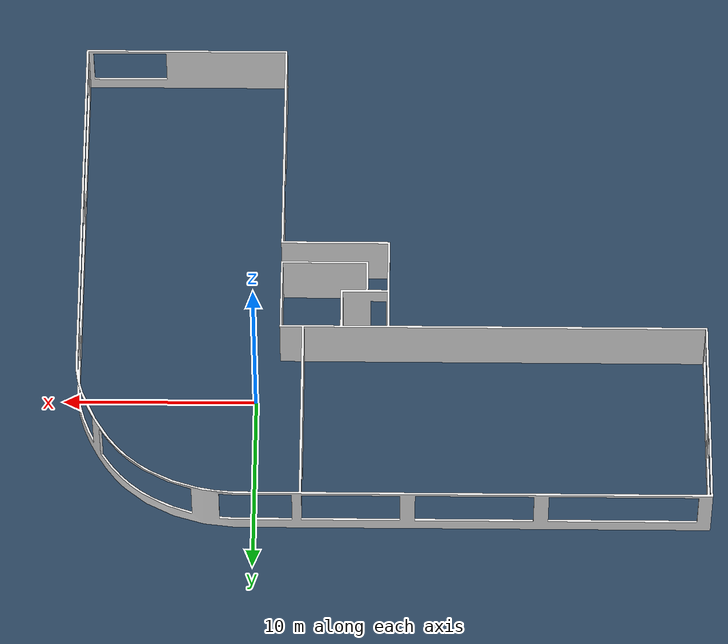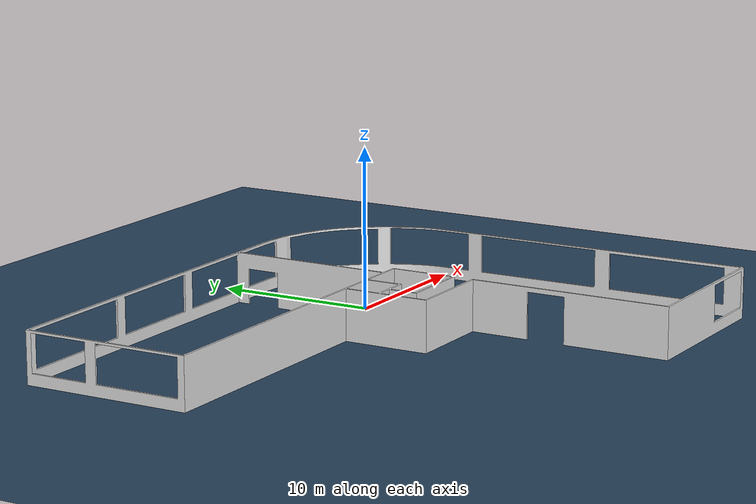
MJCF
<mujoco model="g1_5fingers_office_final">
  <compiler angle="radian" autolimits="true" meshdir="unitree_ros/robots/g1_description/meshes/"/>

  <option timestep="0.002" gravity="0 0 -9.81" cone="elliptic" jacobian="dense" solver="Newton" iterations="50"/>

  <statistic center="0 0 2" extent="20"/>

  <visual>
    <headlight diffuse="0.6 0.6 0.6" ambient="0.3 0.3 0.3" specular="0 0 0"/>
    <rgba haze="0.15 0.25 0.35 1"/>
    <global azimuth="-130" elevation="-20"/>
  </visual>

  <asset>
    <!-- Assets do ambiente -->
    <texture type="skybox" builtin="gradient" rgb1="0.3 0.5 0.7" rgb2="0 0 0" width="512" height="3072"/>
    <texture type="2d" name="groundplane" builtin="checker" mark="edge" rgb1="0.2 0.3 0.4" rgb2="0.1 0.2 0.3"
      markrgb="0.8 0.8 0.8" width="300" height="300"/>
    <material name="groundplane" texture="groundplane" texuniform="true" texrepeat="5 5" reflectance="0.2"/>
    <material name="wall" rgba="0.9 0.9 0.9 1" specular="0.1"/>

    <!-- Paredes do escritório -->
    <mesh name="office_walls" file="../../../3d escritorio/body1_structure/body1_structure.obj" scale="0.01 0.01 0.01"/>
  </asset>

  <worldbody>
    <!-- Iluminação -->
    <light pos="0 0 10" dir="0 0 -1" directional="true"/>
    <light pos="10 10 8" dir="-1 -1 -1" directional="false"/>

    <!-- Chão -->
    <geom name="office_floor" size="50 50 0.05" type="plane" material="groundplane"/>

    <!-- Paredes do escritório -->
    <body name="walls" pos="-5.73 -7.00 0">
      <geom name="office_walls_geom" mesh="office_walls" type="mesh" contype="1" conaffinity="1" material="wall"/>
    </body>

    <!-- G1 Robot com ajuste de posição -->
    <body name="robot_base" pos="0 0 0.80">
      <include file="g1_5fingers_converted.xml"/>
    </body>
  </worldbody>
</mujoco>

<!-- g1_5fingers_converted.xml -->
<mujoco model="g1_29dof_rev_1_0_with_inspire_hand_DFQ">
  <compiler angle="radian" meshdir="unitree_ros/robots/g1_description/meshes/"/>

  <asset>
    <mesh name="pelvis" file="pelvis.STL"/>
    <mesh name="pelvis_contour_link" file="pelvis_contour_link.STL"/>
    <mesh name="left_hip_pitch_link" file="left_hip_pitch_link.STL"/>
    <mesh name="left_hip_roll_link" file="left_hip_roll_link.STL"/>
    <mesh name="left_hip_yaw_link" file="left_hip_yaw_link.STL"/>
    <mesh name="left_knee_link" file="left_knee_link.STL"/>
    <mesh name="left_ankle_pitch_link" file="left_ankle_pitch_link.STL"/>
    <mesh name="left_ankle_roll_link" file="left_ankle_roll_link.STL"/>
    <mesh name="right_hip_pitch_link" file="right_hip_pitch_link.STL"/>
    <mesh name="right_hip_roll_link" file="right_hip_roll_link.STL"/>
    <mesh name="right_hip_yaw_link" file="right_hip_yaw_link.STL"/>
    <mesh name="right_knee_link" file="right_knee_link.STL"/>
    <mesh name="right_ankle_pitch_link" file="right_ankle_pitch_link.STL"/>
    <mesh name="right_ankle_roll_link" file="right_ankle_roll_link.STL"/>
    <mesh name="waist_yaw_link_rev_1_0" file="waist_yaw_link_rev_1_0.STL"/>
    <mesh name="waist_roll_link_rev_1_0" file="waist_roll_link_rev_1_0.STL"/>
    <mesh name="torso_link_rev_1_0" file="torso_link_rev_1_0.STL"/>
    <mesh name="logo_link" file="logo_link.STL"/>
    <mesh name="head_link" file="head_link.STL"/>
    <mesh name="left_shoulder_pitch_link" file="left_shoulder_pitch_link.STL"/>
    <mesh name="left_shoulder_roll_link" file="left_shoulder_roll_link.STL"/>
    <mesh name="left_shoulder_yaw_link" file="left_shoulder_yaw_link.STL"/>
    <mesh name="left_elbow_link" file="left_elbow_link.STL"/>
    <mesh name="left_wrist_roll_link" file="left_wrist_roll_link.STL"/>
    <mesh name="left_wrist_pitch_link" file="left_wrist_pitch_link.STL"/>
    <mesh name="left_wrist_yaw_link" file="left_wrist_yaw_link.STL"/>
    <mesh name="right_shoulder_pitch_link" file="right_shoulder_pitch_link.STL"/>
    <mesh name="right_shoulder_roll_link" file="right_shoulder_roll_link.STL"/>
    <mesh name="right_shoulder_yaw_link" file="right_shoulder_yaw_link.STL"/>
    <mesh name="right_elbow_link" file="right_elbow_link.STL"/>
    <mesh name="right_wrist_roll_link" file="right_wrist_roll_link.STL"/>
    <mesh name="right_wrist_pitch_link" file="right_wrist_pitch_link.STL"/>
    <mesh name="right_wrist_yaw_link" file="right_wrist_yaw_link.STL"/>
    <mesh name="L_hand_base_link" file="L_hand_base_link.STL"/>
    <mesh name="Link11_L" file="Link11_L.STL"/>
    <mesh name="Link12_L" file="Link12_L.STL"/>
    <mesh name="Link13_L" file="Link13_L.STL"/>
    <mesh name="Link14_L" file="Link14_L.STL"/>
    <mesh name="Link15_L" file="Link15_L.STL"/>
    <mesh name="Link16_L" file="Link16_L.STL"/>
    <mesh name="Link17_L" file="Link17_L.STL"/>
    <mesh name="Link18_L" file="Link18_L.STL"/>
    <mesh name="Link19_L" file="Link19_L.STL"/>
    <mesh name="Link20_L" file="Link20_L.STL"/>
    <mesh name="Link21_L" file="Link21_L.STL"/>
    <mesh name="Link22_L" file="Link22_L.STL"/>
    <mesh name="R_hand_base_link" file="R_hand_base_link.STL"/>
    <mesh name="Link11_R" file="Link11_R.STL"/>
    <mesh name="Link12_R" file="Link12_R.STL"/>
    <mesh name="Link13_R" file="Link13_R.STL"/>
    <mesh name="Link14_R" file="Link14_R.STL"/>
    <mesh name="Link15_R" file="Link15_R.STL"/>
    <mesh name="Link16_R" file="Link16_R.STL"/>
    <mesh name="Link17_R" file="Link17_R.STL"/>
    <mesh name="Link18_R" file="Link18_R.STL"/>
    <mesh name="Link19_R" file="Link19_R.STL"/>
    <mesh name="Link20_R" file="Link20_R.STL"/>
    <mesh name="Link21_R" file="Link21_R.STL"/>
    <mesh name="Link22_R" file="Link22_R.STL"/>
  </asset>

  <worldbody>
    <geom type="mesh" contype="0" conaffinity="0" group="1" density="0" rgba="0.2 0.2 0.2 1" mesh="pelvis"/>
    <geom type="mesh" contype="0" conaffinity="0" group="1" density="0" rgba="0.7 0.7 0.7 1" mesh="pelvis_contour_link"/>
    <geom type="mesh" rgba="0.7 0.7 0.7 1" mesh="pelvis_contour_link"/>
    <body name="left_hip_pitch_link" pos="0 0.064452 -0.1027">
      <inertial pos="0.002741 0.047791 -0.02606" quat="0.954862 0.293964 0.0302556 0.030122" mass="1.35" diaginertia="0.00181517 0.00153422 0.00116212"/>
      <joint name="left_hip_pitch_joint" pos="0 0 0" axis="0 1 0" range="-2.5307 2.8798" actuatorfrcrange="-88 88"/>
      <geom type="mesh" contype="0" conaffinity="0" group="1" density="0" rgba="0.2 0.2 0.2 1" mesh="left_hip_pitch_link"/>
      <geom type="mesh" rgba="0.2 0.2 0.2 1" mesh="left_hip_pitch_link"/>
      <body name="left_hip_roll_link" pos="0 0.052 -0.030465" quat="0.996179 0 -0.0873386 0">
        <inertial pos="0.029812 -0.001045 -0.087934" quat="0.977808 -1.97119e-05 0.205576 -0.0403793" mass="1.52" diaginertia="0.00254986 0.00241169 0.00148755"/>
        <joint name="left_hip_roll_joint" pos="0 0 0" axis="1 0 0" range="-0.5236 2.9671" actuatorfrcrange="-139 139"/>
        <geom type="mesh" contype="0" conaffinity="0" group="1" density="0" rgba="0.7 0.7 0.7 1" mesh="left_hip_roll_link"/>
        <geom type="mesh" rgba="0.7 0.7 0.7 1" mesh="left_hip_roll_link"/>
        <body name="left_hip_yaw_link" pos="0.025001 0 -0.12412">
          <inertial pos="-0.057709 -0.010981 -0.15078" quat="0.600598 0.15832 0.223482 0.751181" mass="1.702" diaginertia="0.00776166 0.00717575 0.00160139"/>
          <joint name="left_hip_yaw_joint" pos="0 0 0" axis="0 0 1" range="-2.7576 2.7576" actuatorfrcrange="-88 88"/>
          <geom type="mesh" contype="0" conaffinity="0" group="1" density="0" rgba="0.7 0.7 0.7 1" mesh="left_hip_yaw_link"/>
          <geom type="mesh" rgba="0.7 0.7 0.7 1" mesh="left_hip_yaw_link"/>
          <body name="left_knee_link" pos="-0.078273 0.0021489 -0.17734" quat="0.996179 0 0.0873386 0">
            <inertial pos="0.005457 0.003964 -0.12074" quat="0.923418 -0.0327699 0.0158246 0.382067" mass="1.932" diaginertia="0.0113804 0.0112778 0.00146458"/>
            <joint name="left_knee_joint" pos="0 0 0" axis="0 1 0" range="-0.087267 2.8798" actuatorfrcrange="-139 139"/>
            <geom type="mesh" contype="0" conaffinity="0" group="1" density="0" rgba="0.7 0.7 0.7 1" mesh="left_knee_link"/>
            <geom type="mesh" rgba="0.7 0.7 0.7 1" mesh="left_knee_link"/>
            <body name="left_ankle_pitch_link" pos="0 -9.4445e-05 -0.30001">
              <inertial pos="-0.007269 0 0.011137" quat="0.603053 0.369225 0.369225 0.603053" mass="0.074" diaginertia="1.89e-05 1.40805e-05 6.9195e-06"/>
              <joint name="left_ankle_pitch_joint" pos="0 0 0" axis="0 1 0" range="-0.87267 0.5236" actuatorfrcrange="-35 35"/>
              <geom type="mesh" contype="0" conaffinity="0" group="1" density="0" rgba="0.7 0.7 0.7 1" mesh="left_ankle_pitch_link"/>
              <geom type="mesh" rgba="0.7 0.7 0.7 1" mesh="left_ankle_pitch_link"/>
              <body name="left_ankle_roll_link" pos="0 0 -0.017558">
                <inertial pos="0.026505 0 -0.016425" quat="-0.000481092 0.728482 -0.000618967 0.685065" mass="0.608" diaginertia="0.00167218 0.0016161 0.000217621"/>
                <joint name="left_ankle_roll_joint" pos="0 0 0" axis="1 0 0" range="-0.2618 0.2618" actuatorfrcrange="-35 35"/>
                <geom type="mesh" contype="0" conaffinity="0" group="1" density="0" rgba="0.2 0.2 0.2 1" mesh="left_ankle_roll_link"/>
                <geom size="0.005" pos="-0.05 0.025 -0.03" rgba="0.2 0.2 0.2 1"/>
                <geom size="0.005" pos="-0.05 -0.025 -0.03" rgba="0.2 0.2 0.2 1"/>
                <geom size="0.005" pos="0.12 0.03 -0.03" rgba="0.2 0.2 0.2 1"/>
                <geom size="0.005" pos="0.12 -0.03 -0.03" rgba="0.2 0.2 0.2 1"/>
              </body>
            </body>
          </body>
        </body>
      </body>
    </body>
    <body name="right_hip_pitch_link" pos="0 -0.064452 -0.1027">
      <inertial pos="0.002741 -0.047791 -0.02606" quat="0.954862 -0.293964 0.0302556 -0.030122" mass="1.35" diaginertia="0.00181517 0.00153422 0.00116212"/>
      <joint name="right_hip_pitch_joint" pos="0 0 0" axis="0 1 0" range="-2.5307 2.8798" actuatorfrcrange="-88 88"/>
      <geom type="mesh" contype="0" conaffinity="0" group="1" density="0" rgba="0.2 0.2 0.2 1" mesh="right_hip_pitch_link"/>
      <geom type="mesh" rgba="0.2 0.2 0.2 1" mesh="right_hip_pitch_link"/>
      <body name="right_hip_roll_link" pos="0 -0.052 -0.030465" quat="0.996179 0 -0.0873386 0">
        <inertial pos="0.029812 0.001045 -0.087934" quat="0.977808 1.97119e-05 0.205576 0.0403793" mass="1.52" diaginertia="0.00254986 0.00241169 0.00148755"/>
        <joint name="right_hip_roll_joint" pos="0 0 0" axis="1 0 0" range="-2.9671 0.5236" actuatorfrcrange="-139 139"/>
        <geom type="mesh" contype="0" conaffinity="0" group="1" density="0" rgba="0.7 0.7 0.7 1" mesh="right_hip_roll_link"/>
        <geom type="mesh" rgba="0.7 0.7 0.7 1" mesh="right_hip_roll_link"/>
        <body name="right_hip_yaw_link" pos="0.025001 0 -0.12412">
          <inertial pos="-0.057709 0.010981 -0.15078" quat="0.751181 0.223482 0.15832 0.600598" mass="1.702" diaginertia="0.00776166 0.00717575 0.00160139"/>
          <joint name="right_hip_yaw_joint" pos="0 0 0" axis="0 0 1" range="-2.7576 2.7576" actuatorfrcrange="-88 88"/>
          <geom type="mesh" contype="0" conaffinity="0" group="1" density="0" rgba="0.7 0.7 0.7 1" mesh="right_hip_yaw_link"/>
          <geom type="mesh" rgba="0.7 0.7 0.7 1" mesh="right_hip_yaw_link"/>
          <body name="right_knee_link" pos="-0.078273 -0.0021489 -0.17734" quat="0.996179 0 0.0873386 0">
            <inertial pos="0.005457 -0.003964 -0.12074" quat="0.923439 0.0345276 0.0116333 -0.382012" mass="1.932" diaginertia="0.011374 0.0112843 0.00146452"/>
            <joint name="right_knee_joint" pos="0 0 0" axis="0 1 0" range="-0.087267 2.8798" actuatorfrcrange="-139 139"/>
            <geom type="mesh" contype="0" conaffinity="0" group="1" density="0" rgba="0.7 0.7 0.7 1" mesh="right_knee_link"/>
            <geom type="mesh" rgba="0.7 0.7 0.7 1" mesh="right_knee_link"/>
            <body name="right_ankle_pitch_link" pos="0 9.4445e-05 -0.30001">
              <inertial pos="-0.007269 0 0.011137" quat="0.603053 0.369225 0.369225 0.603053" mass="0.074" diaginertia="1.89e-05 1.40805e-05 6.9195e-06"/>
              <joint name="right_ankle_pitch_joint" pos="0 0 0" axis="0 1 0" range="-0.87267 0.5236" actuatorfrcrange="-35 35"/>
              <geom type="mesh" contype="0" conaffinity="0" group="1" density="0" rgba="0.7 0.7 0.7 1" mesh="right_ankle_pitch_link"/>
              <geom type="mesh" rgba="0.7 0.7 0.7 1" mesh="right_ankle_pitch_link"/>
              <body name="right_ankle_roll_link" pos="0 0 -0.017558">
                <inertial pos="0.026505 0 -0.016425" quat="0.000481092 0.728482 0.000618967 0.685065" mass="0.608" diaginertia="0.00167218 0.0016161 0.000217621"/>
                <joint name="right_ankle_roll_joint" pos="0 0 0" axis="1 0 0" range="-0.2618 0.2618" actuatorfrcrange="-35 35"/>
                <geom type="mesh" contype="0" conaffinity="0" group="1" density="0" rgba="0.2 0.2 0.2 1" mesh="right_ankle_roll_link"/>
                <geom size="0.005" pos="-0.05 0.025 -0.03" rgba="0.2 0.2 0.2 1"/>
                <geom size="0.005" pos="-0.05 -0.025 -0.03" rgba="0.2 0.2 0.2 1"/>
                <geom size="0.005" pos="0.12 0.03 -0.03" rgba="0.2 0.2 0.2 1"/>
                <geom size="0.005" pos="0.12 -0.03 -0.03" rgba="0.2 0.2 0.2 1"/>
              </body>
            </body>
          </body>
        </body>
      </body>
    </body>
    <body name="waist_yaw_link">
      <inertial pos="0.003494 0.000233 0.018034" quat="0.289697 0.591001 -0.337795 0.672821" mass="0.214" diaginertia="0.000163531 0.000107714 0.000102205"/>
      <joint name="waist_yaw_joint" pos="0 0 0" axis="0 0 1" range="-2.618 2.618" actuatorfrcrange="-88 88"/>
      <geom type="mesh" contype="0" conaffinity="0" group="1" density="0" rgba="0.7 0.7 0.7 1" mesh="waist_yaw_link_rev_1_0"/>
      <body name="waist_roll_link" pos="-0.0039635 0 0.044">
        <inertial pos="0 2.3e-05 0" quat="0.5 0.5 -0.5 0.5" mass="0.086" diaginertia="8.245e-06 7.079e-06 6.339e-06"/>
        <joint name="waist_roll_joint" pos="0 0 0" axis="1 0 0" range="-0.52 0.52" actuatorfrcrange="-35 35"/>
        <geom type="mesh" contype="0" conaffinity="0" group="1" density="0" rgba="0.7 0.7 0.7 1" mesh="waist_roll_link_rev_1_0"/>
        <body name="torso_link">
          <inertial pos="0.00203133 0.000339727 0.184597" quat="0.999802 -5.98967e-05 0.0198391 0.0013197" mass="7.817" diaginertia="0.121795 0.109773 0.0273733"/>
          <joint name="waist_pitch_joint" pos="0 0 0" axis="0 1 0" range="-0.52 0.52" actuatorfrcrange="-35 35"/>
          <geom type="mesh" contype="0" conaffinity="0" group="1" density="0" rgba="0.7 0.7 0.7 1" mesh="torso_link_rev_1_0"/>
          <geom type="mesh" rgba="0.7 0.7 0.7 1" mesh="torso_link_rev_1_0"/>
          <geom pos="0.0039635 0 -0.044" quat="1 0 0 0" type="mesh" contype="0" conaffinity="0" group="1" density="0" rgba="0.2 0.2 0.2 1" mesh="logo_link"/>
          <geom pos="0.0039635 0 -0.044" quat="1 0 0 0" type="mesh" rgba="0.2 0.2 0.2 1" mesh="logo_link"/>
          <geom pos="0.0039635 0 -0.044" type="mesh" contype="0" conaffinity="0" group="1" density="0" rgba="0.2 0.2 0.2 1" mesh="head_link"/>
          <geom pos="0.0039635 0 -0.044" type="mesh" rgba="0.2 0.2 0.2 1" mesh="head_link"/>
          <body name="left_shoulder_pitch_link" pos="0.0039563 0.10022 0.24778" quat="0.990264 0.139201 1.38722e-05 -9.86868e-05">
            <inertial pos="0 0.035892 -0.011628" quat="0.654152 0.0130458 -0.326267 0.68225" mass="0.718" diaginertia="0.000465864 0.000432842 0.000406394"/>
            <joint name="left_shoulder_pitch_joint" pos="0 0 0" axis="0 1 0" range="-3.0892 2.6704" actuatorfrcrange="-25 25"/>
            <geom type="mesh" contype="0" conaffinity="0" group="1" density="0" rgba="0.7 0.7 0.7 1" mesh="left_shoulder_pitch_link"/>
            <geom size="0.03 0.025" pos="0 0.04 -0.01" quat="0.707107 0 0.707107 0" type="cylinder" rgba="0.7 0.7 0.7 1"/>
            <body name="left_shoulder_roll_link" pos="0 0.038 -0.013831" quat="0.990268 -0.139172 0 0">
              <inertial pos="-0.000227 0.00727 -0.063243" quat="0.701256 -0.0196223 -0.00710317 0.712604" mass="0.643" diaginertia="0.000691311 0.000618011 0.000388977"/>
              <joint name="left_shoulder_roll_joint" pos="0 0 0" axis="1 0 0" range="-1.5882 2.2515" actuatorfrcrange="-25 25"/>
              <geom type="mesh" contype="0" conaffinity="0" group="1" density="0" rgba="0.7 0.7 0.7 1" mesh="left_shoulder_roll_link"/>
              <geom size="0.03 0.015" pos="-0.004 0.006 -0.053" type="cylinder" rgba="0.7 0.7 0.7 1"/>
              <body name="left_shoulder_yaw_link" pos="0 0.00624 -0.1032">
                <inertial pos="0.010773 -0.002949 -0.072009" quat="0.716879 -0.0964829 -0.0679942 0.687134" mass="0.734" diaginertia="0.00106187 0.00103217 0.000400661"/>
                <joint name="left_shoulder_yaw_joint" pos="0 0 0" axis="0 0 1" range="-2.618 2.618" actuatorfrcrange="-25 25"/>
                <geom type="mesh" contype="0" conaffinity="0" group="1" density="0" rgba="0.7 0.7 0.7 1" mesh="left_shoulder_yaw_link"/>
                <geom type="mesh" rgba="0.7 0.7 0.7 1" mesh="left_shoulder_yaw_link"/>
                <body name="left_elbow_link" pos="0.015783 0 -0.080518">
                  <inertial pos="0.064956 0.004454 -0.010062" quat="0.541765 0.636132 0.388821 0.388129" mass="0.6" diaginertia="0.000443035 0.000421612 0.000259353"/>
                  <joint name="left_elbow_joint" pos="0 0 0" axis="0 1 0" range="-1.0472 2.0944" actuatorfrcrange="-25 25"/>
                  <geom type="mesh" contype="0" conaffinity="0" group="1" density="0" rgba="0.7 0.7 0.7 1" mesh="left_elbow_link"/>
                  <geom type="mesh" rgba="0.7 0.7 0.7 1" mesh="left_elbow_link"/>
                  <body name="left_wrist_roll_link" pos="0.1 0.00188791 -0.01">
                    <inertial pos="0.0171394 0.000537591 4.8864e-07" quat="0.575338 0.411667 -0.574906 0.411094" mass="0.085445" diaginertia="5.48211e-05 4.96646e-05 3.57798e-05"/>
                    <joint name="left_wrist_roll_joint" pos="0 0 0" axis="1 0 0" range="-1.97222 1.97222" actuatorfrcrange="-25 25"/>
                    <geom type="mesh" contype="0" conaffinity="0" group="1" density="0" rgba="0.7 0.7 0.7 1" mesh="left_wrist_roll_link"/>
                    <geom type="mesh" rgba="0.7 0.7 0.7 1" mesh="left_wrist_roll_link"/>
                    <body name="left_wrist_pitch_link" pos="0.038 0 0">
                      <inertial pos="0.0229999 -0.00111685 -0.00111658" quat="0.249998 0.661363 0.293036 0.643608" mass="0.48405" diaginertia="0.000430353 0.000429873 0.000164648"/>
                      <joint name="left_wrist_pitch_joint" pos="0 0 0" axis="0 1 0" range="-1.61443 1.61443" actuatorfrcrange="-5 5"/>
                      <geom type="mesh" contype="0" conaffinity="0" group="1" density="0" rgba="0.7 0.7 0.7 1" mesh="left_wrist_pitch_link"/>
                      <geom type="mesh" rgba="0.7 0.7 0.7 1" mesh="left_wrist_pitch_link"/>
                      <body name="left_wrist_yaw_link" pos="0.046 0 0">
                        <inertial pos="0.0755349 -0.00141118 -0.00100976" quat="0.501653 0.510626 0.50818 0.478915" mass="0.226006" diaginertia="0.000571064 0.000504804 0.000133122"/>
                        <joint name="left_wrist_yaw_joint" pos="0 0 0" axis="0 0 1" range="-1.61443 1.61443" actuatorfrcrange="-5 5"/>
                        <geom type="mesh" contype="0" conaffinity="0" group="1" density="0" rgba="0.7 0.7 0.7 1" mesh="left_wrist_yaw_link"/>
                        <geom type="mesh" rgba="0.7 0.7 0.7 1" mesh="left_wrist_yaw_link"/>
                        <geom pos="0.0415 0 0" quat="0.707107 0 0 0.707107" type="mesh" contype="0" conaffinity="0" group="1" density="0" rgba="1 1 1 1" mesh="L_hand_base_link"/>
                        <geom pos="0.0415 0 0" quat="0.707107 0 0 0.707107" type="mesh" rgba="1 1 1 1" mesh="L_hand_base_link"/>
                        <body name="L_thumb_proximal_base" pos="0.1106 -0.01696 0.02045" quat="-2.59735e-06 0.707107 0 0.707107">
                          <inertial pos="0.0048817 0.00038782 -0.00722" quat="0.445981 0.352284 0.495833 0.656617" mass="0.0018869" diaginertia="8.66031e-08 6.87331e-08 4.94199e-08"/>
                          <joint name="L_thumb_proximal_yaw_joint" pos="0 0 0" axis="0 0 1" range="-0.1 1.3" actuatorfrcrange="-1 1"/>
                          <geom type="mesh" contype="0" conaffinity="0" group="1" density="0" rgba="1 1 1 1" mesh="Link11_L"/>
                          <geom type="mesh" rgba="1 1 1 1" mesh="Link11_L"/>
                          <body name="L_thumb_proximal" pos="0.0099867 0.0098242 -0.0089" quat="0.704571 -0.704573 -0.0598169 0.0598167">
                            <inertial pos="0.021936 -0.01279 -0.0080386" quat="0.25452 0.660687 -0.251949 0.659723" mass="0.0066101" diaginertia="2.78701e-06 2.44024e-06 8.6466e-07"/>
                            <joint name="L_thumb_proximal_pitch_joint" pos="0 0 0" axis="0 0 -1" range="-0.1 0.6" actuatorfrcrange="-1 1"/>
                            <geom type="mesh" contype="0" conaffinity="0" group="1" density="0" rgba="1 1 1 1" mesh="Link12_L"/>
                            <geom type="mesh" rgba="1 1 1 1" mesh="Link12_L"/>
                            <body name="L_thumb_intermediate" pos="0.04407 -0.034553 -0.0008">
                              <inertial pos="0.0095531 0.0016282 -0.0072002" quat="0.30738 0.636732 -0.307526 0.636803" mass="0.0037844" diaginertia="4.6532e-07 4.48114e-07 2.45646e-07"/>
                              <joint name="L_thumb_intermediate_joint" pos="0 0 0" axis="0 0 -1" range="0 0.8" actuatorfrcrange="-1 1"/>
                              <geom type="mesh" contype="0" conaffinity="0" group="1" density="0" rgba="1 1 1 1" mesh="Link13_L"/>
                              <geom type="mesh" rgba="1 1 1 1" mesh="Link13_L"/>
                              <body name="L_thumb_distal" pos="0.020248 -0.010156 -0.0012">
                                <inertial pos="0.0092888 -0.004953 -0.0060033" quat="0.266264 0.65596 -0.262836 0.655544" mass="0.003344" diaginertia="2.0026e-07 1.95246e-07 8.1594e-08"/>
                                <joint name="L_thumb_distal_joint" pos="0 0 0" axis="0 0 -1" range="0 1.2" actuatorfrcrange="-1 1"/>
                                <geom type="mesh" contype="0" conaffinity="0" group="1" density="0" rgba="1 1 1 1" mesh="Link14_L"/>
                                <geom type="mesh" rgba="1 1 1 1" mesh="Link14_L"/>
                              </body>
                            </body>
                          </body>
                        </body>
                        <body name="L_index_proximal" pos="0.17803 0.00028533 0.032268" quat="0.706999 -0.0123409 -0.0123409 0.706999">
                          <inertial pos="0.0012971 -0.011934 -0.0059998" quat="0.489677 0.510115 -0.489692 0.510099" mass="0.0042405" diaginertia="6.9402e-07 6.62904e-07 2.10916e-07"/>
                          <joint name="L_index_proximal_joint" pos="0 0 0" axis="0 0 -1" range="0 1.7" actuatorfrcrange="-1 1"/>
                          <geom type="mesh" contype="0" conaffinity="0" group="1" density="0" rgba="1 1 1 1" mesh="Link15_L"/>
                          <geom type="mesh" rgba="1 1 1 1" mesh="Link15_L"/>
                          <body name="L_index_intermediate" pos="-0.0024229 -0.032041 -0.001">
                            <inertial pos="0.0021753 -0.019567 -0.005" quat="0.528694 0.469555 -0.528694 0.469555" mass="0.0045682" diaginertia="7.8176e-07 7.72427e-07 8.47209e-08"/>
                            <joint name="L_index_intermediate_joint" pos="0 0 0" axis="0 0 -1" range="0 1.7" actuatorfrcrange="-1 1"/>
                            <geom type="mesh" contype="0" conaffinity="0" group="1" density="0" rgba="1 1 1 1" mesh="Link16_L"/>
                            <geom type="mesh" rgba="1 1 1 1" mesh="Link16_L"/>
                          </body>
                        </body>
                        <body name="L_middle_proximal" pos="0.1786 0.00028533 0.01295" quat="0.707107 0 0 0.707107">
                          <inertial pos="0.0012971 -0.011934 -0.0059999" quat="0.489677 0.510115 -0.489692 0.510099" mass="0.0042405" diaginertia="6.9402e-07 6.62904e-07 2.10916e-07"/>
                          <joint name="L_middle_proximal_joint" pos="0 0 0" axis="0 0 -1" range="0 1.7" actuatorfrcrange="-1 1"/>
                          <geom type="mesh" contype="0" conaffinity="0" group="1" density="0" rgba="1 1 1 1" mesh="Link17_L"/>
                          <geom type="mesh" rgba="1 1 1 1" mesh="Link17_L"/>
                          <body name="L_middle_intermediate" pos="-0.0024229 -0.032041 -0.001">
                            <inertial pos="0.001921 -0.020796 -0.0049999" quat="0.531603 0.466115 -0.531728 0.466262" mass="0.0050397" diaginertia="9.8385e-07 9.73288e-07 9.14016e-08"/>
                            <joint name="L_middle_intermediate_joint" pos="0 0 0" axis="0 0 -1" range="0 1.7" actuatorfrcrange="-1 1"/>
                            <geom type="mesh" contype="0" conaffinity="0" group="1" density="0" rgba="1 1 1 1" mesh="Link18_L"/>
                            <geom type="mesh" rgba="1 1 1 1" mesh="Link18_L"/>
                          </body>
                        </body>
                        <body name="L_ring_proximal" pos="0.17841 0.00028533 -0.0062872" quat="0.706864 0.0185099 0.0185099 0.706864">
                          <inertial pos="0.0012971 -0.011934 -0.0059999" quat="0.489677 0.510114 -0.489692 0.510099" mass="0.0042405" diaginertia="6.9402e-07 6.62904e-07 2.10916e-07"/>
                          <joint name="L_ring_proximal_joint" pos="0 0 0" axis="0 0 -1" range="0 1.7" actuatorfrcrange="-1 1"/>
                          <geom type="mesh" contype="0" conaffinity="0" group="1" density="0" rgba="1 1 1 1" mesh="Link19_L"/>
                          <geom type="mesh" rgba="1 1 1 1" mesh="Link19_L"/>
                          <body name="L_ring_intermediate" pos="-0.0024229 -0.032041 -0.001">
                            <inertial pos="0.0021753 -0.019567 -0.005" quat="0.528694 0.469556 -0.528694 0.469556" mass="0.0045682" diaginertia="7.8176e-07 7.72437e-07 8.47208e-08"/>
                            <joint name="L_ring_intermediate_joint" pos="0 0 0" axis="0 0 -1" range="0 1.7" actuatorfrcrange="-1 1"/>
                            <geom type="mesh" contype="0" conaffinity="0" group="1" density="0" rgba="1 1 1 1" mesh="Link20_L"/>
                            <geom type="mesh" rgba="1 1 1 1" mesh="Link20_L"/>
                          </body>
                        </body>
                        <body name="L_pinky_proximal" pos="0.17721 0.00028533 -0.025488" quat="0.706138 0.0370072 0.0370072 0.706138">
                          <inertial pos="0.0012971 -0.011934 -0.0059999" quat="0.489677 0.510114 -0.489692 0.510099" mass="0.0042405" diaginertia="6.9402e-07 6.62904e-07 2.10916e-07"/>
                          <joint name="L_pinky_proximal_joint" pos="0 0 0" axis="0 0 -1" range="0 1.7" actuatorfrcrange="-1 1"/>
                          <geom type="mesh" contype="0" conaffinity="0" group="1" density="0" rgba="1 1 1 1" mesh="Link21_L"/>
                          <geom type="mesh" rgba="1 1 1 1" mesh="Link21_L"/>
                          <body name="L_pinky_intermediate" pos="-0.0024229 -0.032041 -0.001">
                            <inertial pos="0.0024788 -0.016208 -0.0050001" quat="0.526797 0.471683 -0.526793 0.471687" mass="0.0036036" diaginertia="4.4881e-07 4.43809e-07 6.5736e-08"/>
                            <joint name="L_pinky_intermediate_joint" pos="0 0 0" axis="0 0 -1" range="0 1.7" actuatorfrcrange="-1 1"/>
                            <geom type="mesh" contype="0" conaffinity="0" group="1" density="0" rgba="1 1 1 1" mesh="Link22_L"/>
                            <geom type="mesh" rgba="1 1 1 1" mesh="Link22_L"/>
                          </body>
                        </body>
                      </body>
                    </body>
                  </body>
                </body>
              </body>
            </body>
          </body>
          <body name="right_shoulder_pitch_link" pos="0.0039563 -0.10021 0.24778" quat="0.990264 -0.139201 1.38722e-05 9.86868e-05">
            <inertial pos="0 -0.035892 -0.011628" quat="0.68225 -0.326267 0.0130458 0.654152" mass="0.718" diaginertia="0.000465864 0.000432842 0.000406394"/>
            <joint name="right_shoulder_pitch_joint" pos="0 0 0" axis="0 1 0" range="-3.0892 2.6704" actuatorfrcrange="-25 25"/>
            <geom type="mesh" contype="0" conaffinity="0" group="1" density="0" rgba="0.7 0.7 0.7 1" mesh="right_shoulder_pitch_link"/>
            <geom size="0.03 0.025" pos="0 -0.04 -0.01" quat="0.707107 0 0.707107 0" type="cylinder" rgba="0.7 0.7 0.7 1"/>
            <body name="right_shoulder_roll_link" pos="0 -0.038 -0.013831" quat="0.990268 0.139172 0 0">
              <inertial pos="-0.000227 -0.00727 -0.063243" quat="0.712604 -0.00710317 -0.0196223 0.701256" mass="0.643" diaginertia="0.000691311 0.000618011 0.000388977"/>
              <joint name="right_shoulder_roll_joint" pos="0 0 0" axis="1 0 0" range="-2.2515 1.5882" actuatorfrcrange="-25 25"/>
              <geom type="mesh" contype="0" conaffinity="0" group="1" density="0" rgba="0.7 0.7 0.7 1" mesh="right_shoulder_roll_link"/>
              <geom size="0.03 0.015" pos="-0.004 -0.006 -0.053" type="cylinder" rgba="0.7 0.7 0.7 1"/>
              <body name="right_shoulder_yaw_link" pos="0 -0.00624 -0.1032">
                <inertial pos="0.010773 0.002949 -0.072009" quat="0.687134 -0.0679942 -0.0964829 0.716879" mass="0.734" diaginertia="0.00106187 0.00103217 0.000400661"/>
                <joint name="right_shoulder_yaw_joint" pos="0 0 0" axis="0 0 1" range="-2.618 2.618" actuatorfrcrange="-25 25"/>
                <geom type="mesh" contype="0" conaffinity="0" group="1" density="0" rgba="0.7 0.7 0.7 1" mesh="right_shoulder_yaw_link"/>
                <geom type="mesh" rgba="0.7 0.7 0.7 1" mesh="right_shoulder_yaw_link"/>
                <body name="right_elbow_link" pos="0.015783 0 -0.080518">
                  <inertial pos="0.064956 -0.004454 -0.010062" quat="0.388129 0.388821 0.636132 0.541765" mass="0.6" diaginertia="0.000443035 0.000421612 0.000259353"/>
                  <joint name="right_elbow_joint" pos="0 0 0" axis="0 1 0" range="-1.0472 2.0944" actuatorfrcrange="-25 25"/>
                  <geom type="mesh" contype="0" conaffinity="0" group="1" density="0" rgba="0.7 0.7 0.7 1" mesh="right_elbow_link"/>
                  <geom type="mesh" rgba="0.7 0.7 0.7 1" mesh="right_elbow_link"/>
                  <body name="right_wrist_roll_link" pos="0.1 -0.00188791 -0.01">
                    <inertial pos="0.0171394 -0.000537591 4.8864e-07" quat="0.411667 0.575338 -0.411094 0.574906" mass="0.085445" diaginertia="5.48211e-05 4.96646e-05 3.57798e-05"/>
                    <joint name="right_wrist_roll_joint" pos="0 0 0" axis="1 0 0" range="-1.97222 1.97222" actuatorfrcrange="-25 25"/>
                    <geom type="mesh" contype="0" conaffinity="0" group="1" density="0" rgba="0.7 0.7 0.7 1" mesh="right_wrist_roll_link"/>
                    <geom type="mesh" rgba="0.7 0.7 0.7 1" mesh="right_wrist_roll_link"/>
                    <body name="right_wrist_pitch_link" pos="0.038 0 0">
                      <inertial pos="0.0229999 0.00111685 -0.00111658" quat="0.643608 0.293036 0.661363 0.249998" mass="0.48405" diaginertia="0.000430353 0.000429873 0.000164648"/>
                      <joint name="right_wrist_pitch_joint" pos="0 0 0" axis="0 1 0" range="-1.61443 1.61443" actuatorfrcrange="-5 5"/>
                      <geom type="mesh" contype="0" conaffinity="0" group="1" density="0" rgba="0.7 0.7 0.7 1" mesh="right_wrist_pitch_link"/>
                      <geom type="mesh" rgba="0.7 0.7 0.7 1" mesh="right_wrist_pitch_link"/>
                      <body name="right_wrist_yaw_link" pos="0.046 0 0">
                        <inertial pos="0.0755349 0.00139578 -0.00102484" quat="0.478892 0.50828 0.510621 0.501577" mass="0.226006" diaginertia="0.000570476 0.000504233 0.000133116"/>
                        <joint name="right_wrist_yaw_joint" pos="0 0 0" axis="0 0 1" range="-1.61443 1.61443" actuatorfrcrange="-5 5"/>
                        <geom type="mesh" contype="0" conaffinity="0" group="1" density="0" rgba="0.7 0.7 0.7 1" mesh="right_wrist_yaw_link"/>
                        <geom type="mesh" rgba="0.7 0.7 0.7 1" mesh="right_wrist_yaw_link"/>
                        <geom pos="0.0415 0 0" quat="0 0.707107 -0.707107 0" type="mesh" contype="0" conaffinity="0" group="1" density="0" rgba="1 1 1 1" mesh="R_hand_base_link"/>
                        <geom pos="0.0415 0 0" quat="0 0.707107 -0.707107 0" type="mesh" rgba="1 1 1 1" mesh="R_hand_base_link"/>
                        <body name="R_thumb_proximal_base" pos="0.1106 0.01696 0.02045" quat="-0.707107 -2.59735e-06 -0.707107 0">
                          <inertial pos="-0.0048064 0.0009382 -0.00757" quat="0.515015 0.680854 0.408023 0.323596" mass="0.0018869" diaginertia="8.66026e-08 6.8732e-08 4.94194e-08"/>
                          <joint name="R_thumb_proximal_yaw_joint" pos="0 0 0" axis="0 0 -1" range="-0.1 1.3" actuatorfrcrange="-1 1"/>
                          <geom type="mesh" contype="0" conaffinity="0" group="1" density="0" rgba="1 1 1 1" mesh="Link11_R"/>
                          <geom type="mesh" rgba="1 1 1 1" mesh="Link11_R"/>
                          <body name="R_thumb_proximal" pos="-0.0088099 0.010892 -0.00925" quat="0.0996843 0.0996847 0.700046 0.700044">
                            <inertial pos="0.021932 0.012785 -0.0080386" quat="-0.254474 0.660716 0.251893 0.659733" mass="0.0066075" diaginertia="2.78601e-06 2.43933e-06 8.64566e-07"/>
                            <joint name="R_thumb_proximal_pitch_joint" pos="0 0 0" axis="0 0 1" range="-0.1 0.6" actuatorfrcrange="-1 1"/>
                            <geom type="mesh" contype="0" conaffinity="0" group="1" density="0" rgba="1 1 1 1" mesh="Link12_R"/>
                            <geom type="mesh" rgba="1 1 1 1" mesh="Link12_R"/>
                            <body name="R_thumb_intermediate" pos="0.04407 0.034553 -0.0008">
                              <inertial pos="0.0095544 -0.0016282 -0.0071997" quat="0.636718 0.307389 -0.636802 0.307548" mass="0.0037847" diaginertia="4.6531e-07 4.48089e-07 2.45661e-07"/>
                              <joint name="R_thumb_intermediate_joint" pos="0 0 0" axis="0 0 1" range="0 0.8" actuatorfrcrange="-1 1"/>
                              <geom type="mesh" contype="0" conaffinity="0" group="1" density="0" rgba="1 1 1 1" mesh="Link13_R"/>
                              <geom type="mesh" rgba="1 1 1 1" mesh="Link13_R"/>
                              <body name="R_thumb_distal" pos="0.020248 0.010156 -0.0012">
                                <inertial pos="0.0092888 0.0049529 -0.0060033" quat="-0.266294 0.655967 0.262806 0.655537" mass="0.0033441" diaginertia="2.0026e-07 1.95247e-07 8.1593e-08"/>
                                <joint name="R_thumb_distal_joint" pos="0 0 0" axis="0 0 1" range="0 1.2" actuatorfrcrange="-1 1"/>
                                <geom type="mesh" contype="0" conaffinity="0" group="1" density="0" rgba="1 1 1 1" mesh="Link14_R"/>
                                <geom type="mesh" rgba="1 1 1 1" mesh="Link14_R"/>
                              </body>
                            </body>
                          </body>
                        </body>
                        <body name="R_index_proximal" pos="0.17803 -0.00028533 0.032268" quat="0.706999 0.0123358 -0.0123358 -0.706999">
                          <inertial pos="0.0012259 0.011942 -0.0060001" quat="0.50867 0.49121 -0.508643 0.491172" mass="0.0042403" diaginertia="6.9398e-07 6.62871e-07 2.10909e-07"/>
                          <joint name="R_index_proximal_joint" pos="0 0 0" axis="0 0 1" range="0 1.7" actuatorfrcrange="-1 1"/>
                          <geom type="mesh" contype="0" conaffinity="0" group="1" density="0" rgba="1 1 1 1" mesh="Link15_R"/>
                          <geom type="mesh" rgba="1 1 1 1" mesh="Link15_R"/>
                          <body name="R_index_intermediate" pos="-0.0026138 0.032026 -0.001">
                            <inertial pos="0.0019697 0.019589 -0.005" quat="0.466773 0.531152 -0.466773 0.531153" mass="0.0045683" diaginertia="7.8179e-07 7.72465e-07 8.47212e-08"/>
                            <joint name="R_index_intermediate_joint" pos="0 0 0" axis="0 0 1" range="0 1.7" actuatorfrcrange="-1 1"/>
                            <geom type="mesh" contype="0" conaffinity="0" group="1" density="0" rgba="1 1 1 1" mesh="Link16_R"/>
                            <geom type="mesh" rgba="1 1 1 1" mesh="Link16_R"/>
                          </body>
                        </body>
                        <body name="R_middle_proximal" pos="0.1786 -0.00028533 0.01295" quat="0.707107 -2.59735e-06 2.59735e-06 -0.707107">
                          <inertial pos="0.001297 0.011934 -0.0060001" quat="0.510131 0.489693 -0.510105 0.489653" mass="0.0042403" diaginertia="6.9397e-07 6.62865e-07 2.10915e-07"/>
                          <joint name="R_middle_proximal_joint" pos="0 0 0" axis="0 0 1" range="0 1.7" actuatorfrcrange="-1 1"/>
                          <geom type="mesh" contype="0" conaffinity="0" group="1" density="0" rgba="1 1 1 1" mesh="Link17_R"/>
                          <geom type="mesh" rgba="1 1 1 1" mesh="Link17_R"/>
                          <body name="R_middle_intermediate" pos="-0.0024229 0.032041 -0.001">
                            <inertial pos="0.001921 0.020796 -0.005" quat="0.466148 0.531627 -0.466229 0.531705" mass="0.0050396" diaginertia="9.8384e-07 9.73279e-07 9.14014e-08"/>
                            <joint name="R_middle_intermediate_joint" pos="0 0 0" axis="0 0 1" range="0 1.7" actuatorfrcrange="-1 1"/>
                            <geom type="mesh" contype="0" conaffinity="0" group="1" density="0" rgba="1 1 1 1" mesh="Link18_R"/>
                            <geom type="mesh" rgba="1 1 1 1" mesh="Link18_R"/>
                          </body>
                        </body>
                        <body name="R_ring_proximal" pos="0.17841 -0.00028533 -0.0062872" quat="-0.706864 0.0185215 -0.0185215 0.706864">
                          <inertial pos="0.001297 0.011934 -0.0060002" quat="0.510129 0.489691 -0.510107 0.489654" mass="0.0042403" diaginertia="6.9397e-07 6.62865e-07 2.10915e-07"/>
                          <joint name="R_ring_proximal_joint" pos="0 0 0" axis="0 0 1" range="0 1.7" actuatorfrcrange="-1 1"/>
                          <geom type="mesh" contype="0" conaffinity="0" group="1" density="0" rgba="1 1 1 1" mesh="Link19_R"/>
                          <geom type="mesh" rgba="1 1 1 1" mesh="Link19_R"/>
                          <body name="R_ring_intermediate" pos="-0.0024229 0.032041 -0.001">
                            <inertial pos="0.0021753 0.019567 -0.005" quat="0.469554 0.528695 -0.469554 0.528695" mass="0.0045683" diaginertia="7.8177e-07 7.72448e-07 8.4722e-08"/>
                            <joint name="R_ring_intermediate_joint" pos="0 0 0" axis="0 0 1" range="0 1.7" actuatorfrcrange="-1 1"/>
                            <geom type="mesh" contype="0" conaffinity="0" group="1" density="0" rgba="1 1 1 1" mesh="Link20_R"/>
                            <geom type="mesh" rgba="1 1 1 1" mesh="Link20_R"/>
                          </body>
                        </body>
                        <body name="R_pinky_proximal" pos="0.17721 -0.00028533 -0.025488" quat="-0.706138 0.0369975 -0.0369975 0.706138">
                          <inertial pos="0.001297 0.011934 -0.0060001" quat="0.51013 0.489693 -0.510106 0.489653" mass="0.0042403" diaginertia="6.9397e-07 6.62865e-07 2.10915e-07"/>
                          <joint name="R_pinky_proximal_joint" pos="0 0 0" axis="0 0 1" range="0 1.7" actuatorfrcrange="-1 1"/>
                          <geom type="mesh" contype="0" conaffinity="0" group="1" density="0" rgba="1 1 1 1" mesh="Link21_R"/>
                          <geom type="mesh" rgba="1 1 1 1" mesh="Link21_R"/>
                          <body name="R_pinky_intermediate" pos="-0.0024229 0.032041 -0.001">
                            <inertial pos="0.0024748 0.016203 -0.0050031" quat="0.47398 0.528862 -0.469291 0.524799" mass="0.0035996" diaginertia="4.4867e-07 4.43723e-07 6.56538e-08"/>
                            <joint name="R_pinky_intermediate_joint" pos="0 0 0" axis="0 0 1" range="0 1.7" actuatorfrcrange="-1 1"/>
                            <geom type="mesh" contype="0" conaffinity="0" group="1" density="0" rgba="1 1 1 1" mesh="Link22_R"/>
                            <geom type="mesh" rgba="1 1 1 1" mesh="Link22_R"/>
                          </body>
                        </body>
                      </body>
                    </body>
                  </body>
                </body>
              </body>
            </body>
          </body>
        </body>
      </body>
    </body>
  </worldbody>
</mujoco>
